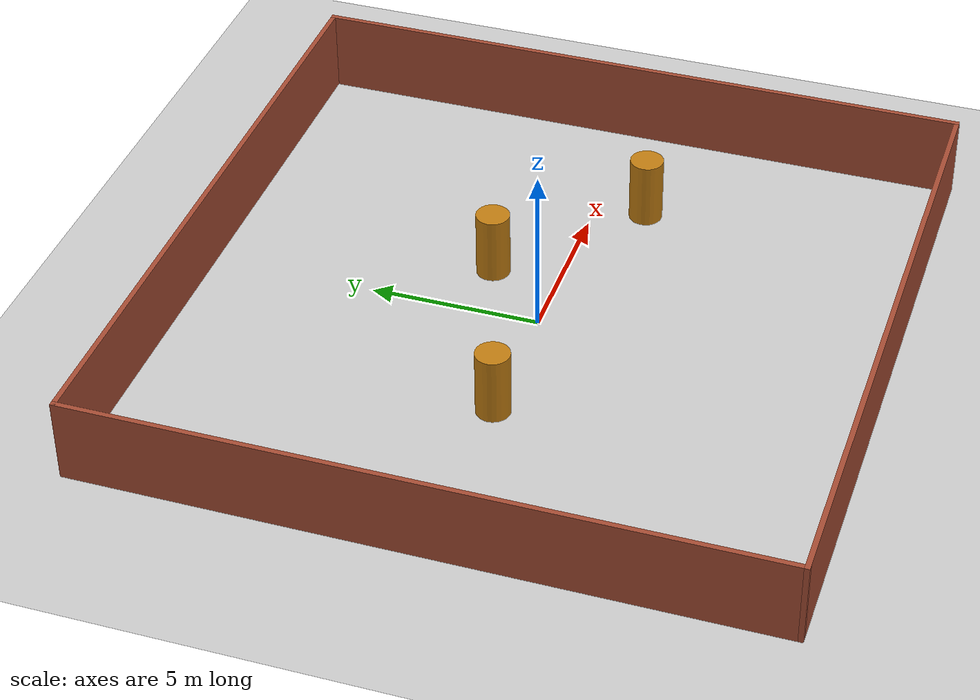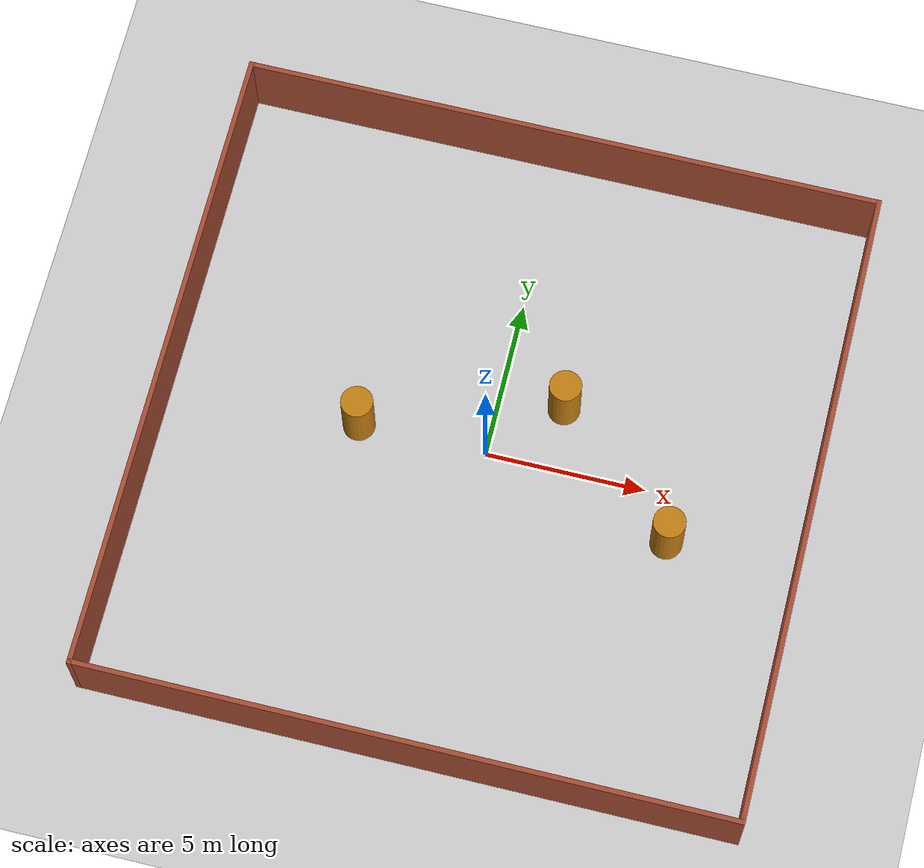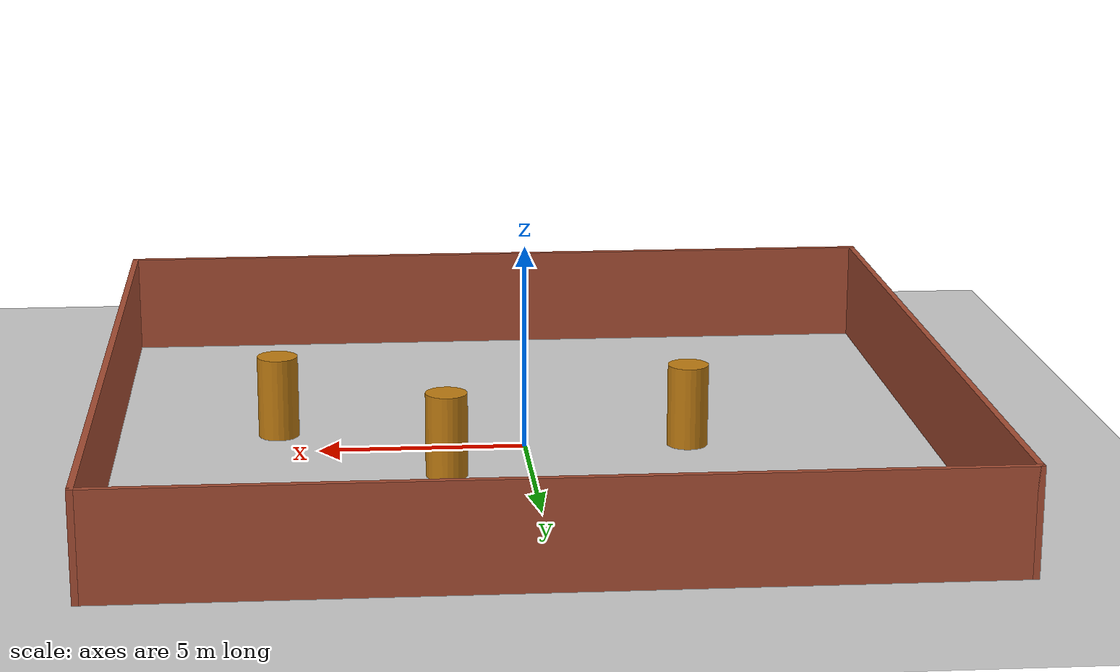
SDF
<sdf version="1.5">
 <world name="default">
  <light name="sun" type="directional">
   <pose>0 0 10 0 -0 0</pose>
   <diffuse>0.8 0.8 0.8 1</diffuse>
   <specular>0.2 0.2 0.2 1</specular>
   <attenuation>
    <range>1000</range>
    <constant>0.9</constant>
    <linear>0.01</linear>
    <quadratic>0.001</quadratic>
   </attenuation>
   <direction>-0.5 0.1 -0.9</direction>
  </light>
  <model name="ground_plane">
   <static>1</static>
   <link name="link">
    <collision name="collision">
     <geometry><plane><normal>0 0 1</normal><size>100 100</size></plane></geometry>
     <surface><friction><ode><mu>100</mu><mu2>50</mu2></ode></friction></surface>
    </collision>
    <visual name="visual">
     <cast_shadows>0</cast_shadows>
     <geometry><plane><normal>0 0 1</normal><size>100 100</size></plane></geometry>
     <material>
      <script><uri>file://media/materials/scripts/gazebo.material</uri><name>Gazebo/Grey</name></script>
     </material>
    </visual>
   </link>
  </model>
  <gravity>0 0 -9.8</gravity>
  <magnetic_field>6e-06 2.3e-05 -4.2e-05</magnetic_field>
  <atmosphere type="adiabatic"/>
  <physics name="default_physics" default="0" type="ode">
   <max_step_size>0.001</max_step_size>
   <real_time_factor>1</real_time_factor>
   <real_time_update_rate>1000</real_time_update_rate>
  </physics>
  <scene><ambient>0.4 0.4 0.4 1</ambient><background>0.7 0.7 0.7 1</background><shadows>1</shadows></scene>
  <spherical_coordinates>
   <surface_model>EARTH_WGS84</surface_model>
   <latitude_deg>0</latitude_deg>
   <longitude_deg>0</longitude_deg>
   <elevation>0</elevation>
   <heading_deg>0</heading_deg>
  </spherical_coordinates>
  <model name="blank">
   <link name="Wall_0">
    <collision name="Wall_0_Collision">
     <geometry><box><size>20.15 0.15 2.5</size></box></geometry>
     <pose>0 0 1.25 0 -0 0</pose>
    </collision>
    <visual name="Wall_0_Visual">
     <pose>0 0 1.25 0 -0 0</pose>
     <geometry><box><size>20.15 0.15 2.5</size></box></geometry>
     <material>
      <script><uri>file://media/materials/scripts/gazebo.material</uri><name>Gazebo/Bricks</name></script>
      <ambient>1 1 1 1</ambient>
     </material>
     <meta><layer>0</layer></meta>
    </visual>
    <pose>0 10 0 0 -0 0</pose>
   </link>
   <link name="Wall_1">
    <collision name="Wall_1_Collision">
     <geometry><box><size>20.15 0.15 2.5</size></box></geometry>
     <pose>0 0 1.25 0 -0 0</pose>
    </collision>
    <visual name="Wall_1_Visual">
     <pose>0 0 1.25 0 -0 0</pose>
     <geometry><box><size>20.15 0.15 2.5</size></box></geometry>
     <material>
      <script><uri>file://media/materials/scripts/gazebo.material</uri><name>Gazebo/Bricks</name></script>
      <ambient>1 1 1 1</ambient>
     </material>
     <meta><layer>0</layer></meta>
    </visual>
    <pose>10 0 0 0 -0 -1.5708</pose>
   </link>
   <link name="Wall_2">
    <collision name="Wall_2_Collision">
     <geometry><box><size>20.15 0.15 2.5</size></box></geometry>
     <pose>0 0 1.25 0 -0 0</pose>
    </collision>
    <visual name="Wall_2_Visual">
     <pose>0 0 1.25 0 -0 0</pose>
     <geometry><box><size>20.15 0.15 2.5</size></box></geometry>
     <material>
      <script><uri>file://media/materials/scripts/gazebo.material</uri><name>Gazebo/Bricks</name></script>
      <ambient>1 1 1 1</ambient>
     </material>
     <meta><layer>0</layer></meta>
    </visual>
    <pose>0 -10 0 0 -0 3.14159</pose>
   </link>
   <link name="Wall_3">
    <collision name="Wall_3_Collision">
     <geometry><box><size>20.15 0.15 2.5</size></box></geometry>
     <pose>0 0 1.25 0 -0 0</pose>
    </collision>
    <visual name="Wall_3_Visual">
     <pose>0 0 1.25 0 -0 0</pose>
     <geometry><box><size>20.15 0.15 2.5</size></box></geometry>
     <material>
      <script><uri>file://media/materials/scripts/gazebo.material</uri><name>Gazebo/Bricks</name></script>
      <ambient>1 1 1 1</ambient>
     </material>
     <meta><layer>0</layer></meta>
    </visual>
    <pose>-10 0 0 0 -0 1.5708</pose>
   </link>
   <static>1</static>
  </model>
  <model name="unit_cylinder">
   <link name="link">
    <inertial>
     <mass>1</mass>
     <inertia><ixx>0.145833</ixx><ixy>0</ixy><ixz>0</ixz><iyy>0.145833</iyy><iyz>0</iyz><izz>0.125</izz></inertia>
    </inertial>
    <visual name="visual">
     <geometry><cylinder><radius>0.5</radius><length>3</length></cylinder></geometry>
     <material>
      <script><name>Gazebo/Grey</name><uri>file://media/materials/scripts/gazebo.material</uri></script>
      <shader type="pixel"><normal_map>__default__</normal_map></shader>
      <ambient>0.757 0.49 0.067 1</ambient>
      <diffuse>0.7 0.7 0.7 1</diffuse>
      <specular>0.01 0.01 0.01 1</specular>
      <emissive>0 0 0 1</emissive>
     </material>
    </visual>
    <collision name="collision">
     <geometry><cylinder><radius>0.5</radius><length>1</length></cylinder></geometry>
     <surface>
      <friction>
       <ode><mu>1</mu><mu2>1</mu2><fdir1>0 0 0</fdir1><slip1>0</slip1><slip2>0</slip2></ode>
       <torsional>
        <coefficient>1</coefficient>
        <patch_radius>0</patch_radius>
        <surface_radius>0</surface_radius>
        <use_patch_radius>1</use_patch_radius>
        <ode><slip>0</slip></ode>
       </torsional>
      </friction>
      <bounce><restitution_coefficient>0</restitution_coefficient><threshold>1e+06</threshold></bounce>
      <contact>
       <collide_without_contact>0</collide_without_contact>
       <collide_without_contact_bitmask>1</collide_without_contact_bitmask>
       <collide_bitmask>1</collide_bitmask>
       <ode>
        <soft_cfm>0</soft_cfm>
        <soft_erp>0.2</soft_erp>
        <kp>1e+13</kp>
        <kd>1</kd>
        <max_vel>0.01</max_vel>
        <min_depth>0</min_depth>
       </ode>
       <bullet>
        <split_impulse>1</split_impulse>
        <split_impulse_penetration_threshold>-0.01</split_impulse_penetration_threshold>
        <soft_cfm>0</soft_cfm>
        <soft_erp>0.2</soft_erp>
        <kp>1e+13</kp>
        <kd>1</kd>
       </bullet>
      </contact>
     </surface>
    </collision>
   </link>
   <static>0</static>
   <pose>-4 0 0.5 0 -0 1e-06</pose>
  </model>
  <model name="unit_cylinder_0">
   <link name="link">
    <inertial>
     <mass>1</mass>
     <inertia><ixx>0.145833</ixx><ixy>0</ixy><ixz>0</ixz><iyy>0.145833</iyy><iyz>0</iyz><izz>0.125</izz></inertia>
    </inertial>
    <visual name="visual">
     <geometry><cylinder><radius>0.5</radius><length>3</length></cylinder></geometry>
     <material>
      <script><name>Gazebo/Grey</name><uri>file://media/materials/scripts/gazebo.material</uri></script>
      <shader type="pixel"><normal_map>__default__</normal_map></shader>
      <ambient>0.757 0.49 0.067 1</ambient>
      <diffuse>0.7 0.7 0.7 1</diffuse>
      <specular>0.01 0.01 0.01 1</specular>
      <emissive>0 0 0 1</emissive>
     </material>
    </visual>
    <collision name="collision">
     <geometry><cylinder><radius>0.5</radius><length>1</length></cylinder></geometry>
     <surface>
      <friction>
       <ode><mu>1</mu><mu2>1</mu2><fdir1>0 0 0</fdir1><slip1>0</slip1><slip2>0</slip2></ode>
       <torsional>
        <coefficient>1</coefficient>
        <patch_radius>0</patch_radius>
        <surface_radius>0</surface_radius>
        <use_patch_radius>1</use_patch_radius>
        <ode><slip>0</slip></ode>
       </torsional>
      </friction>
      <bounce><restitution_coefficient>0</restitution_coefficient><threshold>1e+06</threshold></bounce>
      <contact>
       <collide_without_contact>0</collide_without_contact>
       <collide_without_contact_bitmask>1</collide_without_contact_bitmask>
       <collide_bitmask>1</collide_bitmask>
       <ode>
        <soft_cfm>0</soft_cfm>
        <soft_erp>0.2</soft_erp>
        <kp>1e+13</kp>
        <kd>1</kd>
        <max_vel>0.01</max_vel>
        <min_depth>0</min_depth>
       </ode>
       <bullet>
        <split_impulse>1</split_impulse>
        <split_impulse_penetration_threshold>-0.01</split_impulse_penetration_threshold>
        <soft_cfm>0</soft_cfm>
        <soft_erp>0.2</soft_erp>
        <kp>1e+13</kp>
        <kd>1</kd>
       </bullet>
      </contact>
     </surface>
    </collision>
   </link>
   <static>0</static>
   <pose>2 2 0.5 0 -0 1e-06</pose>
  </model>
  <model name="unit_cylinder_1">
   <link name="link">
    <inertial>
     <mass>1</mass>
     <inertia><ixx>0.145833</ixx><ixy>0</ixy><ixz>0</ixz><iyy>0.145833</iyy><iyz>0</iyz><izz>0.125</izz></inertia>
    </inertial>
    <visual name="visual">
     <geometry><cylinder><radius>0.5</radius><length>3</length></cylinder></geometry>
     <material>
      <script><name>Gazebo/Grey</name><uri>file://media/materials/scripts/gazebo.material</uri></script>
      <shader type="pixel"><normal_map>__default__</normal_map></shader>
      <ambient>0.757 0.49 0.067 1</ambient>
      <diffuse>0.7 0.7 0.7 1</diffuse>
      <specular>0.01 0.01 0.01 1</specular>
      <emissive>0 0 0 1</emissive>
     </material>
    </visual>
    <collision name="collision">
     <geometry><cylinder><radius>0.5</radius><length>1</length></cylinder></geometry>
     <surface>
      <friction>
       <ode><mu>1</mu><mu2>1</mu2><fdir1>0 0 0</fdir1><slip1>0</slip1><slip2>0</slip2></ode>
       <torsional>
        <coefficient>1</coefficient>
        <patch_radius>0</patch_radius>
        <surface_radius>0</surface_radius>
        <use_patch_radius>1</use_patch_radius>
        <ode><slip>0</slip></ode>
       </torsional>
      </friction>
      <bounce><restitution_coefficient>0</restitution_coefficient><threshold>1e+06</threshold></bounce>
      <contact>
       <collide_without_contact>0</collide_without_contact>
       <collide_without_contact_bitmask>1</collide_without_contact_bitmask>
       <collide_bitmask>1</collide_bitmask>
       <ode>
        <soft_cfm>0</soft_cfm>
        <soft_erp>0.2</soft_erp>
        <kp>1e+13</kp>
        <kd>1</kd>
        <max_vel>0.01</max_vel>
        <min_depth>0</min_depth>
       </ode>
       <bullet>
        <split_impulse>1</split_impulse>
        <split_impulse_penetration_threshold>-0.01</split_impulse_penetration_threshold>
        <soft_cfm>0</soft_cfm>
        <soft_erp>0.2</soft_erp>
        <kp>1e+13</kp>
        <kd>1</kd>
       </bullet>
      </contact>
     </surface>
    </collision>
   </link>
   <static>0</static>
   <pose>6 -1.5 0.5 0 -0 1e-06</pose>
  </model>
 </world>
</sdf>
